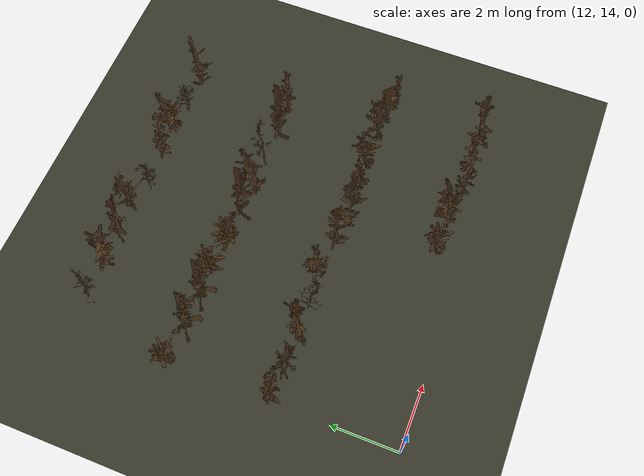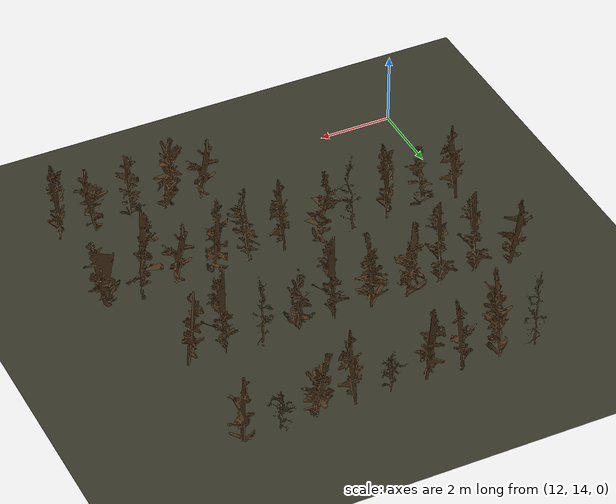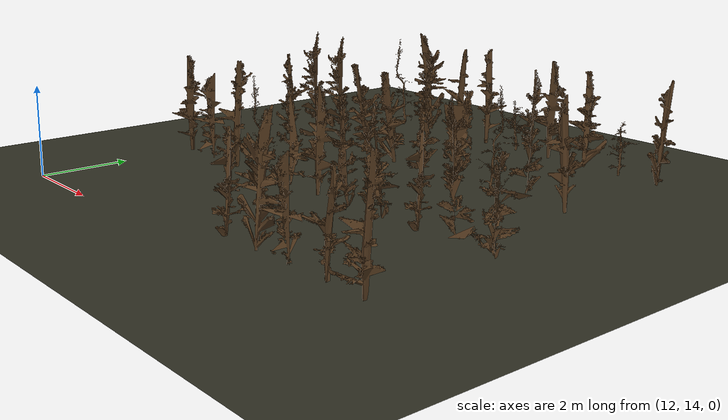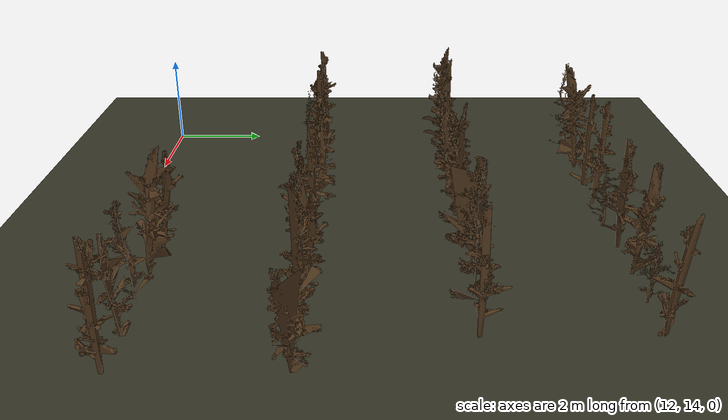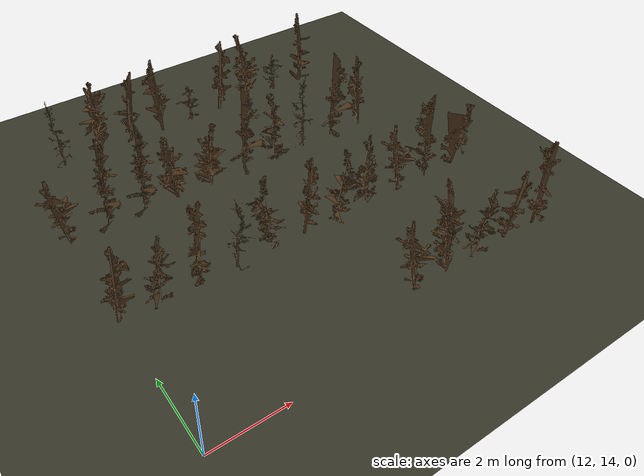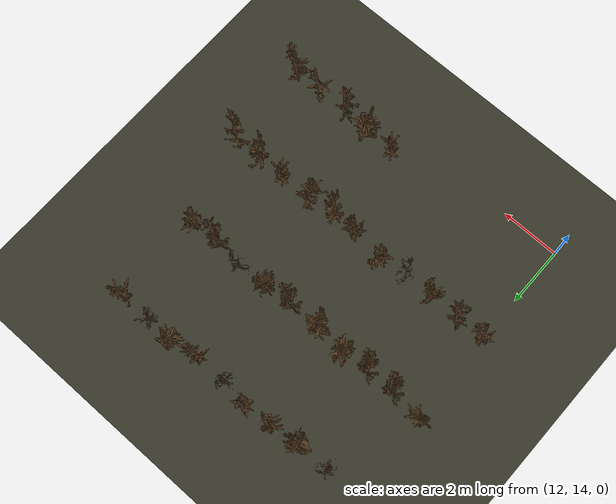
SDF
<sdf version="1.9">
 <world name="orchard_dormant_world">
  <model name="ground_plane">
   <static>true</static>
   <link name="link">
    <collision name="collision">
     <geometry><plane><normal>0 0 1</normal><size>500 500</size></plane></geometry>
    </collision>
    <visual name="visual">
     <geometry><plane><normal>0 0 1</normal><size>500 500</size></plane></geometry>
     <material><ambient>0.2 0.2 0.15 1</ambient><diffuse>0.2 0.2 0.15 1</diffuse></material>
    </visual>
   </link>
  </model>
  <model name="tree10">
   <static>true</static>
   <pose>21.000 23.830 -0.1 0 0 3.693</pose>
   <link name="link">
    <collision name="collision">
     <geometry>
      <mesh>
       <uri>file:///home/administrator/ros2/orchard_navigation_rl_ws/src/orchard_worlds/models/orchard_model/tree13_collision.stl</uri>
      </mesh>
     </geometry>
    </collision>
    <visual name="visual">
     <geometry>
      <mesh>
       <uri>file:///home/administrator/ros2/orchard_navigation_rl_ws/src/orchard_worlds/models/orchard_model/tree13.stl</uri>
      </mesh>
     </geometry>
     <material><ambient>0.3 0.2 0.1 1</ambient><diffuse>0.3 0.2 0.1 1</diffuse></material>
    </visual>
   </link>
  </model>
  <model name="tree11">
   <static>true</static>
   <pose>20.000 23.830 -0.1 0 0 0.044</pose>
   <link name="link">
    <collision name="collision">
     <geometry>
      <mesh>
       <uri>file:///home/administrator/ros2/orchard_navigation_rl_ws/src/orchard_worlds/models/orchard_model/tree14_collision.stl</uri>
      </mesh>
     </geometry>
    </collision>
    <visual name="visual">
     <geometry>
      <mesh>
       <uri>file:///home/administrator/ros2/orchard_navigation_rl_ws/src/orchard_worlds/models/orchard_model/tree14.stl</uri>
      </mesh>
     </geometry>
     <material><ambient>0.3 0.2 0.1 1</ambient><diffuse>0.3 0.2 0.1 1</diffuse></material>
    </visual>
   </link>
  </model>
  <model name="tree12">
   <static>true</static>
   <pose>19.000 23.830 -0.1 0 0 4.734</pose>
   <link name="link">
    <collision name="collision">
     <geometry>
      <mesh>
       <uri>file:///home/administrator/ros2/orchard_navigation_rl_ws/src/orchard_worlds/models/orchard_model/tree12_collision.stl</uri>
      </mesh>
     </geometry>
    </collision>
    <visual name="visual">
     <geometry>
      <mesh>
       <uri>file:///home/administrator/ros2/orchard_navigation_rl_ws/src/orchard_worlds/models/orchard_model/tree12.stl</uri>
      </mesh>
     </geometry>
     <material><ambient>0.3 0.2 0.1 1</ambient><diffuse>0.3 0.2 0.1 1</diffuse></material>
    </visual>
   </link>
  </model>
  <model name="tree13">
   <static>true</static>
   <pose>18.000 23.830 -0.1 0 0 2.517</pose>
   <link name="link">
    <collision name="collision">
     <geometry>
      <mesh>
       <uri>file:///home/administrator/ros2/orchard_navigation_rl_ws/src/orchard_worlds/models/orchard_model/tree15_collision.stl</uri>
      </mesh>
     </geometry>
    </collision>
    <visual name="visual">
     <geometry>
      <mesh>
       <uri>file:///home/administrator/ros2/orchard_navigation_rl_ws/src/orchard_worlds/models/orchard_model/tree15.stl</uri>
      </mesh>
     </geometry>
     <material><ambient>0.3 0.2 0.1 1</ambient><diffuse>0.3 0.2 0.1 1</diffuse></material>
    </visual>
   </link>
  </model>
  <model name="tree14">
   <static>true</static>
   <pose>17.000 23.830 -0.1 0 0 2.137</pose>
   <link name="link">
    <collision name="collision">
     <geometry>
      <mesh>
       <uri>file:///home/administrator/ros2/orchard_navigation_rl_ws/src/orchard_worlds/models/orchard_model/tree14_collision.stl</uri>
      </mesh>
     </geometry>
    </collision>
    <visual name="visual">
     <geometry>
      <mesh>
       <uri>file:///home/administrator/ros2/orchard_navigation_rl_ws/src/orchard_worlds/models/orchard_model/tree14.stl</uri>
      </mesh>
     </geometry>
     <material><ambient>0.3 0.2 0.1 1</ambient><diffuse>0.3 0.2 0.1 1</diffuse></material>
    </visual>
   </link>
  </model>
  <model name="tree15">
   <static>true</static>
   <pose>16.000 23.830 -0.1 0 0 5.024</pose>
   <link name="link">
    <collision name="collision">
     <geometry>
      <mesh>
       <uri>file:///home/administrator/ros2/orchard_navigation_rl_ws/src/orchard_worlds/models/orchard_model/tree15_collision.stl</uri>
      </mesh>
     </geometry>
    </collision>
    <visual name="visual">
     <geometry>
      <mesh>
       <uri>file:///home/administrator/ros2/orchard_navigation_rl_ws/src/orchard_worlds/models/orchard_model/tree15.stl</uri>
      </mesh>
     </geometry>
     <material><ambient>0.3 0.2 0.1 1</ambient><diffuse>0.3 0.2 0.1 1</diffuse></material>
    </visual>
   </link>
  </model>
  <model name="tree16">
   <static>true</static>
   <pose>15.000 23.830 -0.1 0 0 2.188</pose>
   <link name="link">
    <collision name="collision">
     <geometry>
      <mesh>
       <uri>file:///home/administrator/ros2/orchard_navigation_rl_ws/src/orchard_worlds/models/orchard_model/tree13_collision.stl</uri>
      </mesh>
     </geometry>
    </collision>
    <visual name="visual">
     <geometry>
      <mesh>
       <uri>file:///home/administrator/ros2/orchard_navigation_rl_ws/src/orchard_worlds/models/orchard_model/tree13.stl</uri>
      </mesh>
     </geometry>
     <material><ambient>0.3 0.2 0.1 1</ambient><diffuse>0.3 0.2 0.1 1</diffuse></material>
    </visual>
   </link>
  </model>
  <model name="tree17">
   <static>true</static>
   <pose>14.000 23.830 -0.1 0 0 1.109</pose>
   <link name="link">
    <collision name="collision">
     <geometry>
      <mesh>
       <uri>file:///home/administrator/ros2/orchard_navigation_rl_ws/src/orchard_worlds/models/orchard_model/tree7_collision.stl</uri>
      </mesh>
     </geometry>
    </collision>
    <visual name="visual">
     <geometry>
      <mesh>
       <uri>file:///home/administrator/ros2/orchard_navigation_rl_ws/src/orchard_worlds/models/orchard_model/tree7.stl</uri>
      </mesh>
     </geometry>
     <material><ambient>0.3 0.2 0.1 1</ambient><diffuse>0.3 0.2 0.1 1</diffuse></material>
    </visual>
   </link>
  </model>
  <model name="tree18">
   <static>true</static>
   <pose>13.000 23.830 -0.1 0 0 5.993</pose>
   <link name="link">
    <collision name="collision">
     <geometry>
      <mesh>
       <uri>file:///home/administrator/ros2/orchard_navigation_rl_ws/src/orchard_worlds/models/orchard_model/tree9_collision.stl</uri>
      </mesh>
     </geometry>
    </collision>
    <visual name="visual">
     <geometry>
      <mesh>
       <uri>file:///home/administrator/ros2/orchard_navigation_rl_ws/src/orchard_worlds/models/orchard_model/tree9.stl</uri>
      </mesh>
     </geometry>
     <material><ambient>0.3 0.2 0.1 1</ambient><diffuse>0.3 0.2 0.1 1</diffuse></material>
    </visual>
   </link>
  </model>
  <model name="tree47">
   <static>true</static>
   <pose>21.000 20.800 -0.1 0 0 5.839</pose>
   <link name="link">
    <collision name="collision">
     <geometry>
      <mesh>
       <uri>file:///home/administrator/ros2/orchard_navigation_rl_ws/src/orchard_worlds/models/orchard_model/tree15_collision.stl</uri>
      </mesh>
     </geometry>
    </collision>
    <visual name="visual">
     <geometry>
      <mesh>
       <uri>file:///home/administrator/ros2/orchard_navigation_rl_ws/src/orchard_worlds/models/orchard_model/tree15.stl</uri>
      </mesh>
     </geometry>
     <material><ambient>0.3 0.2 0.1 1</ambient><diffuse>0.3 0.2 0.1 1</diffuse></material>
    </visual>
   </link>
  </model>
  <model name="tree48">
   <static>true</static>
   <pose>20.000 20.800 -0.1 0 0 1.792</pose>
   <link name="link">
    <collision name="collision">
     <geometry>
      <mesh>
       <uri>file:///home/administrator/ros2/orchard_navigation_rl_ws/src/orchard_worlds/models/orchard_model/tree3_collision.stl</uri>
      </mesh>
     </geometry>
    </collision>
    <visual name="visual">
     <geometry>
      <mesh>
       <uri>file:///home/administrator/ros2/orchard_navigation_rl_ws/src/orchard_worlds/models/orchard_model/tree3.stl</uri>
      </mesh>
     </geometry>
     <material><ambient>0.3 0.2 0.1 1</ambient><diffuse>0.3 0.2 0.1 1</diffuse></material>
    </visual>
   </link>
  </model>
  <model name="tree49">
   <static>true</static>
   <pose>19.000 20.800 -0.1 0 0 2.987</pose>
   <link name="link">
    <collision name="collision">
     <geometry>
      <mesh>
       <uri>file:///home/administrator/ros2/orchard_navigation_rl_ws/src/orchard_worlds/models/orchard_model/tree9_collision.stl</uri>
      </mesh>
     </geometry>
    </collision>
    <visual name="visual">
     <geometry>
      <mesh>
       <uri>file:///home/administrator/ros2/orchard_navigation_rl_ws/src/orchard_worlds/models/orchard_model/tree9.stl</uri>
      </mesh>
     </geometry>
     <material><ambient>0.3 0.2 0.1 1</ambient><diffuse>0.3 0.2 0.1 1</diffuse></material>
    </visual>
   </link>
  </model>
  <model name="tree50">
   <static>true</static>
   <pose>18.000 20.800 -0.1 0 0 3.843</pose>
   <link name="link">
    <collision name="collision">
     <geometry>
      <mesh>
       <uri>file:///home/administrator/ros2/orchard_navigation_rl_ws/src/orchard_worlds/models/orchard_model/tree11_collision.stl</uri>
      </mesh>
     </geometry>
    </collision>
    <visual name="visual">
     <geometry>
      <mesh>
       <uri>file:///home/administrator/ros2/orchard_navigation_rl_ws/src/orchard_worlds/models/orchard_model/tree11.stl</uri>
      </mesh>
     </geometry>
     <material><ambient>0.3 0.2 0.1 1</ambient><diffuse>0.3 0.2 0.1 1</diffuse></material>
    </visual>
   </link>
  </model>
  <model name="tree51">
   <static>true</static>
   <pose>17.000 20.800 -0.1 0 0 1.557</pose>
   <link name="link">
    <collision name="collision">
     <geometry>
      <mesh>
       <uri>file:///home/administrator/ros2/orchard_navigation_rl_ws/src/orchard_worlds/models/orchard_model/tree3_collision.stl</uri>
      </mesh>
     </geometry>
    </collision>
    <visual name="visual">
     <geometry>
      <mesh>
       <uri>file:///home/administrator/ros2/orchard_navigation_rl_ws/src/orchard_worlds/models/orchard_model/tree3.stl</uri>
      </mesh>
     </geometry>
     <material><ambient>0.3 0.2 0.1 1</ambient><diffuse>0.3 0.2 0.1 1</diffuse></material>
    </visual>
   </link>
  </model>
  <model name="tree52">
   <static>true</static>
   <pose>16.000 20.800 -0.1 0 0 1.061</pose>
   <link name="link">
    <collision name="collision">
     <geometry>
      <mesh>
       <uri>file:///home/administrator/ros2/orchard_navigation_rl_ws/src/orchard_worlds/models/orchard_model/tree12_collision.stl</uri>
      </mesh>
     </geometry>
    </collision>
    <visual name="visual">
     <geometry>
      <mesh>
       <uri>file:///home/administrator/ros2/orchard_navigation_rl_ws/src/orchard_worlds/models/orchard_model/tree12.stl</uri>
      </mesh>
     </geometry>
     <material><ambient>0.3 0.2 0.1 1</ambient><diffuse>0.3 0.2 0.1 1</diffuse></material>
    </visual>
   </link>
  </model>
  <model name="tree53">
   <static>true</static>
   <pose>15.000 20.800 -0.1 0 0 0.024</pose>
   <link name="link">
    <collision name="collision">
     <geometry>
      <mesh>
       <uri>file:///home/administrator/ros2/orchard_navigation_rl_ws/src/orchard_worlds/models/orchard_model/tree12_collision.stl</uri>
      </mesh>
     </geometry>
    </collision>
    <visual name="visual">
     <geometry>
      <mesh>
       <uri>file:///home/administrator/ros2/orchard_navigation_rl_ws/src/orchard_worlds/models/orchard_model/tree12.stl</uri>
      </mesh>
     </geometry>
     <material><ambient>0.3 0.2 0.1 1</ambient><diffuse>0.3 0.2 0.1 1</diffuse></material>
    </visual>
   </link>
  </model>
  <model name="tree54">
   <static>true</static>
   <pose>14.000 20.800 -0.1 0 0 0.943</pose>
   <link name="link">
    <collision name="collision">
     <geometry>
      <mesh>
       <uri>file:///home/administrator/ros2/orchard_navigation_rl_ws/src/orchard_worlds/models/orchard_model/tree3_collision.stl</uri>
      </mesh>
     </geometry>
    </collision>
    <visual name="visual">
     <geometry>
      <mesh>
       <uri>file:///home/administrator/ros2/orchard_navigation_rl_ws/src/orchard_worlds/models/orchard_model/tree3.stl</uri>
      </mesh>
     </geometry>
     <material><ambient>0.3 0.2 0.1 1</ambient><diffuse>0.3 0.2 0.1 1</diffuse></material>
    </visual>
   </link>
  </model>
  <model name="tree55">
   <static>true</static>
   <pose>13.000 20.800 -0.1 0 0 1.076</pose>
   <link name="link">
    <collision name="collision">
     <geometry>
      <mesh>
       <uri>file:///home/administrator/ros2/orchard_navigation_rl_ws/src/orchard_worlds/models/orchard_model/tree3_collision.stl</uri>
      </mesh>
     </geometry>
    </collision>
    <visual name="visual">
     <geometry>
      <mesh>
       <uri>file:///home/administrator/ros2/orchard_navigation_rl_ws/src/orchard_worlds/models/orchard_model/tree3.stl</uri>
      </mesh>
     </geometry>
     <material><ambient>0.3 0.2 0.1 1</ambient><diffuse>0.3 0.2 0.1 1</diffuse></material>
    </visual>
   </link>
  </model>
  <model name="tree56">
   <static>true</static>
   <pose>12.000 20.800 -0.1 0 0 5.086</pose>
   <link name="link">
    <collision name="collision">
     <geometry>
      <mesh>
       <uri>file:///home/administrator/ros2/orchard_navigation_rl_ws/src/orchard_worlds/models/orchard_model/tree8_collision.stl</uri>
      </mesh>
     </geometry>
    </collision>
    <visual name="visual">
     <geometry>
      <mesh>
       <uri>file:///home/administrator/ros2/orchard_navigation_rl_ws/src/orchard_worlds/models/orchard_model/tree8.stl</uri>
      </mesh>
     </geometry>
     <material><ambient>0.3 0.2 0.1 1</ambient><diffuse>0.3 0.2 0.1 1</diffuse></material>
    </visual>
   </link>
  </model>
  <model name="tree83">
   <static>true</static>
   <pose>22.000 17.800 -0.1 0 0 2.015</pose>
   <link name="link">
    <collision name="collision">
     <geometry>
      <mesh>
       <uri>file:///home/administrator/ros2/orchard_navigation_rl_ws/src/orchard_worlds/models/orchard_model/tree11_collision.stl</uri>
      </mesh>
     </geometry>
    </collision>
    <visual name="visual">
     <geometry>
      <mesh>
       <uri>file:///home/administrator/ros2/orchard_navigation_rl_ws/src/orchard_worlds/models/orchard_model/tree11.stl</uri>
      </mesh>
     </geometry>
     <material><ambient>0.3 0.2 0.1 1</ambient><diffuse>0.3 0.2 0.1 1</diffuse></material>
    </visual>
   </link>
  </model>
  <model name="tree84">
   <static>true</static>
   <pose>21.000 17.800 -0.1 0 0 4.747</pose>
   <link name="link">
    <collision name="collision">
     <geometry>
      <mesh>
       <uri>file:///home/administrator/ros2/orchard_navigation_rl_ws/src/orchard_worlds/models/orchard_model/tree3_collision.stl</uri>
      </mesh>
     </geometry>
    </collision>
    <visual name="visual">
     <geometry>
      <mesh>
       <uri>file:///home/administrator/ros2/orchard_navigation_rl_ws/src/orchard_worlds/models/orchard_model/tree3.stl</uri>
      </mesh>
     </geometry>
     <material><ambient>0.3 0.2 0.1 1</ambient><diffuse>0.3 0.2 0.1 1</diffuse></material>
    </visual>
   </link>
  </model>
  <model name="tree85">
   <static>true</static>
   <pose>20.000 17.800 -0.1 0 0 4.273</pose>
   <link name="link">
    <collision name="collision">
     <geometry>
      <mesh>
       <uri>file:///home/administrator/ros2/orchard_navigation_rl_ws/src/orchard_worlds/models/orchard_model/tree8_collision.stl</uri>
      </mesh>
     </geometry>
    </collision>
    <visual name="visual">
     <geometry>
      <mesh>
       <uri>file:///home/administrator/ros2/orchard_navigation_rl_ws/src/orchard_worlds/models/orchard_model/tree8.stl</uri>
      </mesh>
     </geometry>
     <material><ambient>0.3 0.2 0.1 1</ambient><diffuse>0.3 0.2 0.1 1</diffuse></material>
    </visual>
   </link>
  </model>
  <model name="tree86">
   <static>true</static>
   <pose>19.000 17.800 -0.1 0 0 5.819</pose>
   <link name="link">
    <collision name="collision">
     <geometry>
      <mesh>
       <uri>file:///home/administrator/ros2/orchard_navigation_rl_ws/src/orchard_worlds/models/orchard_model/tree10_collision.stl</uri>
      </mesh>
     </geometry>
    </collision>
    <visual name="visual">
     <geometry>
      <mesh>
       <uri>file:///home/administrator/ros2/orchard_navigation_rl_ws/src/orchard_worlds/models/orchard_model/tree10.stl</uri>
      </mesh>
     </geometry>
     <material><ambient>0.3 0.2 0.1 1</ambient><diffuse>0.3 0.2 0.1 1</diffuse></material>
    </visual>
   </link>
  </model>
  <model name="tree87">
   <static>true</static>
   <pose>18.000 17.800 -0.1 0 0 1.104</pose>
   <link name="link">
    <collision name="collision">
     <geometry>
      <mesh>
       <uri>file:///home/administrator/ros2/orchard_navigation_rl_ws/src/orchard_worlds/models/orchard_model/tree10_collision.stl</uri>
      </mesh>
     </geometry>
    </collision>
    <visual name="visual">
     <geometry>
      <mesh>
       <uri>file:///home/administrator/ros2/orchard_navigation_rl_ws/src/orchard_worlds/models/orchard_model/tree10.stl</uri>
      </mesh>
     </geometry>
     <material><ambient>0.3 0.2 0.1 1</ambient><diffuse>0.3 0.2 0.1 1</diffuse></material>
    </visual>
   </link>
  </model>
  <model name="tree88">
   <static>true</static>
   <pose>17.000 17.800 -0.1 0 0 2.852</pose>
   <link name="link">
    <collision name="collision">
     <geometry>
      <mesh>
       <uri>file:///home/administrator/ros2/orchard_navigation_rl_ws/src/orchard_worlds/models/orchard_model/tree15_collision.stl</uri>
      </mesh>
     </geometry>
    </collision>
    <visual name="visual">
     <geometry>
      <mesh>
       <uri>file:///home/administrator/ros2/orchard_navigation_rl_ws/src/orchard_worlds/models/orchard_model/tree15.stl</uri>
      </mesh>
     </geometry>
     <material><ambient>0.3 0.2 0.1 1</ambient><diffuse>0.3 0.2 0.1 1</diffuse></material>
    </visual>
   </link>
  </model>
  <model name="tree89">
   <static>true</static>
   <pose>16.000 17.800 -0.1 0 0 4.731</pose>
   <link name="link">
    <collision name="collision">
     <geometry>
      <mesh>
       <uri>file:///home/administrator/ros2/orchard_navigation_rl_ws/src/orchard_worlds/models/orchard_model/tree10_collision.stl</uri>
      </mesh>
     </geometry>
    </collision>
    <visual name="visual">
     <geometry>
      <mesh>
       <uri>file:///home/administrator/ros2/orchard_navigation_rl_ws/src/orchard_worlds/models/orchard_model/tree10.stl</uri>
      </mesh>
     </geometry>
     <material><ambient>0.3 0.2 0.1 1</ambient><diffuse>0.3 0.2 0.1 1</diffuse></material>
    </visual>
   </link>
  </model>
  <model name="tree90">
   <static>true</static>
   <pose>15.000 17.800 -0.1 0 0 0.616</pose>
   <link name="link">
    <collision name="collision">
     <geometry>
      <mesh>
       <uri>file:///home/administrator/ros2/orchard_navigation_rl_ws/src/orchard_worlds/models/orchard_model/tree9_collision.stl</uri>
      </mesh>
     </geometry>
    </collision>
    <visual name="visual">
     <geometry>
      <mesh>
       <uri>file:///home/administrator/ros2/orchard_navigation_rl_ws/src/orchard_worlds/models/orchard_model/tree9.stl</uri>
      </mesh>
     </geometry>
     <material><ambient>0.3 0.2 0.1 1</ambient><diffuse>0.3 0.2 0.1 1</diffuse></material>
    </visual>
   </link>
  </model>
  <model name="tree91">
   <static>true</static>
   <pose>14.000 17.800 -0.1 0 0 2.583</pose>
   <link name="link">
    <collision name="collision">
     <geometry>
      <mesh>
       <uri>file:///home/administrator/ros2/orchard_navigation_rl_ws/src/orchard_worlds/models/orchard_model/tree6_collision.stl</uri>
      </mesh>
     </geometry>
    </collision>
    <visual name="visual">
     <geometry>
      <mesh>
       <uri>file:///home/administrator/ros2/orchard_navigation_rl_ws/src/orchard_worlds/models/orchard_model/tree6.stl</uri>
      </mesh>
     </geometry>
     <material><ambient>0.3 0.2 0.1 1</ambient><diffuse>0.3 0.2 0.1 1</diffuse></material>
    </visual>
   </link>
  </model>
  <model name="tree92">
   <static>true</static>
   <pose>13.000 17.800 -0.1 0 0 0.845</pose>
   <link name="link">
    <collision name="collision">
     <geometry>
      <mesh>
       <uri>file:///home/administrator/ros2/orchard_navigation_rl_ws/src/orchard_worlds/models/orchard_model/tree1_collision.stl</uri>
      </mesh>
     </geometry>
    </collision>
    <visual name="visual">
     <geometry>
      <mesh>
       <uri>file:///home/administrator/ros2/orchard_navigation_rl_ws/src/orchard_worlds/models/orchard_model/tree1.stl</uri>
      </mesh>
     </geometry>
     <material><ambient>0.3 0.2 0.1 1</ambient><diffuse>0.3 0.2 0.1 1</diffuse></material>
    </visual>
   </link>
  </model>
  <model name="tree93">
   <static>true</static>
   <pose>12.000 17.800 -0.1 0 0 2.415</pose>
   <link name="link">
    <collision name="collision">
     <geometry>
      <mesh>
       <uri>file:///home/administrator/ros2/orchard_navigation_rl_ws/src/orchard_worlds/models/orchard_model/tree15_collision.stl</uri>
      </mesh>
     </geometry>
    </collision>
    <visual name="visual">
     <geometry>
      <mesh>
       <uri>file:///home/administrator/ros2/orchard_navigation_rl_ws/src/orchard_worlds/models/orchard_model/tree15.stl</uri>
      </mesh>
     </geometry>
     <material><ambient>0.3 0.2 0.1 1</ambient><diffuse>0.3 0.2 0.1 1</diffuse></material>
    </visual>
   </link>
  </model>
  <model name="tree117">
   <static>true</static>
   <pose>22.000 14.900 -0.1 0 0 2.674</pose>
   <link name="link">
    <collision name="collision">
     <geometry>
      <mesh>
       <uri>file:///home/administrator/ros2/orchard_navigation_rl_ws/src/orchard_worlds/models/orchard_model/tree6_collision.stl</uri>
      </mesh>
     </geometry>
    </collision>
    <visual name="visual">
     <geometry>
      <mesh>
       <uri>file:///home/administrator/ros2/orchard_navigation_rl_ws/src/orchard_worlds/models/orchard_model/tree6.stl</uri>
      </mesh>
     </geometry>
     <material><ambient>0.3 0.2 0.1 1</ambient><diffuse>0.3 0.2 0.1 1</diffuse></material>
    </visual>
   </link>
  </model>
  <model name="tree118">
   <static>true</static>
   <pose>21.000 14.900 -0.1 0 0 2.108</pose>
   <link name="link">
    <collision name="collision">
     <geometry>
      <mesh>
       <uri>file:///home/administrator/ros2/orchard_navigation_rl_ws/src/orchard_worlds/models/orchard_model/tree8_collision.stl</uri>
      </mesh>
     </geometry>
    </collision>
    <visual name="visual">
     <geometry>
      <mesh>
       <uri>file:///home/administrator/ros2/orchard_navigation_rl_ws/src/orchard_worlds/models/orchard_model/tree8.stl</uri>
      </mesh>
     </geometry>
     <material><ambient>0.3 0.2 0.1 1</ambient><diffuse>0.3 0.2 0.1 1</diffuse></material>
    </visual>
   </link>
  </model>
  <model name="tree119">
   <static>true</static>
   <pose>20.000 14.900 -0.1 0 0 0.393</pose>
   <link name="link">
    <collision name="collision">
     <geometry>
      <mesh>
       <uri>file:///home/administrator/ros2/orchard_navigation_rl_ws/src/orchard_worlds/models/orchard_model/tree1_collision.stl</uri>
      </mesh>
     </geometry>
    </collision>
    <visual name="visual">
     <geometry>
      <mesh>
       <uri>file:///home/administrator/ros2/orchard_navigation_rl_ws/src/orchard_worlds/models/orchard_model/tree1.stl</uri>
      </mesh>
     </geometry>
     <material><ambient>0.3 0.2 0.1 1</ambient><diffuse>0.3 0.2 0.1 1</diffuse></material>
    </visual>
   </link>
  </model>
  <model name="tree120">
   <static>true</static>
   <pose>19.000 14.900 -0.1 0 0 4.306</pose>
   <link name="link">
    <collision name="collision">
     <geometry>
      <mesh>
       <uri>file:///home/administrator/ros2/orchard_navigation_rl_ws/src/orchard_worlds/models/orchard_model/tree7_collision.stl</uri>
      </mesh>
     </geometry>
    </collision>
    <visual name="visual">
     <geometry>
      <mesh>
       <uri>file:///home/administrator/ros2/orchard_navigation_rl_ws/src/orchard_worlds/models/orchard_model/tree7.stl</uri>
      </mesh>
     </geometry>
     <material><ambient>0.3 0.2 0.1 1</ambient><diffuse>0.3 0.2 0.1 1</diffuse></material>
    </visual>
   </link>
  </model>
  <model name="tree121">
   <static>true</static>
   <pose>18.000 14.900 -0.1 0 0 4.327</pose>
   <link name="link">
    <collision name="collision">
     <geometry>
      <mesh>
       <uri>file:///home/administrator/ros2/orchard_navigation_rl_ws/src/orchard_worlds/models/orchard_model/tree8_collision.stl</uri>
      </mesh>
     </geometry>
    </collision>
    <visual name="visual">
     <geometry>
      <mesh>
       <uri>file:///home/administrator/ros2/orchard_navigation_rl_ws/src/orchard_worlds/models/orchard_model/tree8.stl</uri>
      </mesh>
     </geometry>
     <material><ambient>0.3 0.2 0.1 1</ambient><diffuse>0.3 0.2 0.1 1</diffuse></material>
    </visual>
   </link>
  </model>
 </world>
</sdf>
